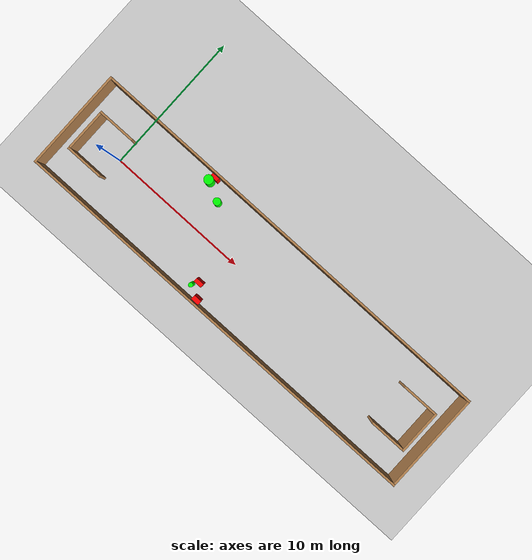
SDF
<sdf version="1.7">
 <world name="default">
  <light name="sun" type="directional">
   <pose>0 0 10 0 -0 0</pose>
   <diffuse>0.8 0.8 0.8 1</diffuse>
   <specular>0.2 0.2 0.2 1</specular>
   <attenuation>
    <range>1000</range>
    <constant>0.9</constant>
    <linear>0.01</linear>
    <quadratic>0.001</quadratic>
   </attenuation>
   <direction>-0.5 0.1 -0.9</direction>
   <spot><inner_angle>0</inner_angle><outer_angle>0</outer_angle><falloff>0</falloff></spot>
  </light>
  <model name="ground_plane">
   <static>1</static>
   <link name="link">
    <collision name="collision">
     <geometry><plane><normal>0 0 1</normal><size>100 100</size></plane></geometry>
     <surface>
      <contact><collide_bitmask>65535</collide_bitmask></contact>
      <friction><ode><mu>100</mu><mu2>50</mu2></ode></friction>
     </surface>
    </collision>
    <visual name="visual">
     <cast_shadows>0</cast_shadows>
     <geometry><plane><normal>0 0 1</normal><size>100 100</size></plane></geometry>
     <material>
      <script><uri>file://media/materials/scripts/gazebo.material</uri><name>Gazebo/Grey</name></script>
     </material>
    </visual>
   </link>
  </model>
  <gravity>0 0 -9.8</gravity>
  <magnetic_field>6e-06 2.3e-05 -4.2e-05</magnetic_field>
  <atmosphere type="adiabatic"/>
  <physics type="ode">
   <max_step_size>0.001</max_step_size>
   <real_time_factor>1</real_time_factor>
   <real_time_update_rate>1000</real_time_update_rate>
  </physics>
  <scene><ambient>0.4 0.4 0.4 1</ambient><background>0.7 0.7 0.7 1</background><shadows>1</shadows></scene>
  <spherical_coordinates>
   <surface_model>EARTH_WGS84</surface_model>
   <latitude_deg>0</latitude_deg>
   <longitude_deg>0</longitude_deg>
   <elevation>0</elevation>
   <heading_deg>0</heading_deg>
  </spherical_coordinates>
  <model name="my_base_walls">
   <link name="Wall_0">
    <collision name="Wall_0_Collision">
     <geometry><box><size>7.15 0.15 2.5</size></box></geometry>
     <pose>0 0 1.25 0 -0 0</pose>
    </collision>
    <visual name="Wall_0_Visual">
     <pose>0 0 1.25 0 -0 0</pose>
     <geometry><box><size>7.15 0.15 2.5</size></box></geometry>
     <material>
      <script><uri>file://media/materials/scripts/gazebo.material</uri><name>Gazebo/Wood</name></script>
      <ambient>1 1 1 1</ambient>
     </material>
     <meta><layer>0</layer></meta>
    </visual>
    <pose>-15 0 0 0 -0 1.5708</pose>
   </link>
   <link name="Wall_10">
    <collision name="Wall_10_Collision">
     <geometry><box><size>2.65 0.15 2.5</size></box></geometry>
     <pose>0 0 1.25 0 -0 0</pose>
    </collision>
    <visual name="Wall_10_Visual">
     <pose>0 0 1.25 0 -0 0</pose>
     <geometry><box><size>2.65 0.15 2.5</size></box></geometry>
     <material>
      <script><uri>file://media/materials/scripts/gazebo.material</uri><name>Gazebo/Wood</name></script>
      <ambient>1 1 1 1</ambient>
     </material>
     <meta><layer>0</layer></meta>
    </visual>
    <pose>-12.75 -1.5 0 0 -0 0</pose>
   </link>
   <link name="Wall_12">
    <collision name="Wall_12_Collision">
     <geometry><box><size>2.65 0.15 2.5</size></box></geometry>
     <pose>0 0 1.25 0 -0 0</pose>
    </collision>
    <visual name="Wall_12_Visual">
     <pose>0 0 1.25 0 -0 0</pose>
     <geometry><box><size>2.65 0.15 2.5</size></box></geometry>
     <material>
      <script><uri>file://media/materials/scripts/gazebo.material</uri><name>Gazebo/Wood</name></script>
      <ambient>1 1 1 1</ambient>
     </material>
     <meta><layer>0</layer></meta>
    </visual>
    <pose>-12.75 1.5 0 0 -0 0</pose>
   </link>
   <link name="Wall_14">
    <collision name="Wall_14_Collision">
     <geometry><box><size>3.15 0.15 2.5</size></box></geometry>
     <pose>0 0 1.25 0 -0 0</pose>
    </collision>
    <visual name="Wall_14_Visual">
     <pose>0 0 1.25 0 -0 0</pose>
     <geometry><box><size>3.15 0.15 2.5</size></box></geometry>
     <material>
      <script><uri>file://media/materials/scripts/gazebo.material</uri><name>Gazebo/Wood</name></script>
      <ambient>1 1 1 1</ambient>
     </material>
     <meta><layer>0</layer></meta>
    </visual>
    <pose>14 0 0 0 -0 -1.5708</pose>
   </link>
   <link name="Wall_15">
    <collision name="Wall_15_Collision">
     <geometry><box><size>2.65 0.15 2.5</size></box></geometry>
     <pose>0 0 1.25 0 -0 0</pose>
    </collision>
    <visual name="Wall_15_Visual">
     <pose>0 0 1.25 0 -0 0</pose>
     <geometry><box><size>2.65 0.15 2.5</size></box></geometry>
     <material>
      <script><uri>file://media/materials/scripts/gazebo.material</uri><name>Gazebo/Wood</name></script>
      <ambient>1 1 1 1</ambient>
     </material>
     <meta><layer>0</layer></meta>
    </visual>
    <pose>12.75 -1.5 0 0 -0 3.14159</pose>
   </link>
   <link name="Wall_17">
    <collision name="Wall_17_Collision">
     <geometry><box><size>2.65 0.15 2.5</size></box></geometry>
     <pose>0 0 1.25 0 -0 0</pose>
    </collision>
    <visual name="Wall_17_Visual">
     <pose>0 0 1.25 0 -0 0</pose>
     <geometry><box><size>2.65 0.15 2.5</size></box></geometry>
     <material>
      <script><uri>file://media/materials/scripts/gazebo.material</uri><name>Gazebo/Wood</name></script>
      <ambient>1 1 1 1</ambient>
     </material>
     <meta><layer>0</layer></meta>
    </visual>
    <pose>12.75 1.5 0 0 -0 3.14159</pose>
   </link>
   <link name="Wall_2">
    <collision name="Wall_2_Collision">
     <geometry><box><size>30.15 0.15 2.5</size></box></geometry>
     <pose>0 0 1.25 0 -0 0</pose>
    </collision>
    <visual name="Wall_2_Visual">
     <pose>0 0 1.25 0 -0 0</pose>
     <geometry><box><size>30.15 0.15 2.5</size></box></geometry>
     <material>
      <script><uri>file://media/materials/scripts/gazebo.material</uri><name>Gazebo/Wood</name></script>
      <ambient>1 1 1 1</ambient>
     </material>
     <meta><layer>0</layer></meta>
    </visual>
    <pose>-0 -3.5 0 0 -0 0</pose>
   </link>
   <link name="Wall_4">
    <collision name="Wall_4_Collision">
     <geometry><box><size>30.15 0.15 2.5</size></box></geometry>
     <pose>0 0 1.25 0 -0 0</pose>
    </collision>
    <visual name="Wall_4_Visual">
     <pose>0 0 1.25 0 -0 0</pose>
     <geometry><box><size>30.15 0.15 2.5</size></box></geometry>
     <material>
      <script><uri>file://media/materials/scripts/gazebo.material</uri><name>Gazebo/Wood</name></script>
      <ambient>1 1 1 1</ambient>
     </material>
     <meta><layer>0</layer></meta>
    </visual>
    <pose>-0 3.5 0 0 -0 0</pose>
   </link>
   <link name="Wall_6">
    <collision name="Wall_6_Collision">
     <geometry><box><size>7.15 0.15 2.5</size></box></geometry>
     <pose>0 0 1.25 0 -0 0</pose>
    </collision>
    <visual name="Wall_6_Visual">
     <pose>0 0 1.25 0 -0 0</pose>
     <geometry><box><size>7.15 0.15 2.5</size></box></geometry>
     <material>
      <script><uri>file://media/materials/scripts/gazebo.material</uri><name>Gazebo/Wood</name></script>
      <ambient>1 1 1 1</ambient>
     </material>
     <meta><layer>0</layer></meta>
    </visual>
    <pose>15 0 0 0 -0 -1.5708</pose>
   </link>
   <link name="Wall_9">
    <collision name="Wall_9_Collision">
     <geometry><box><size>3.15 0.15 2.5</size></box></geometry>
     <pose>0 0 1.25 0 -0 0</pose>
    </collision>
    <visual name="Wall_9_Visual">
     <pose>0 0 1.25 0 -0 0</pose>
     <geometry><box><size>3.15 0.15 2.5</size></box></geometry>
     <material>
      <script><uri>file://media/materials/scripts/gazebo.material</uri><name>Gazebo/Wood</name></script>
      <ambient>1 1 1 1</ambient>
     </material>
     <meta><layer>0</layer></meta>
    </visual>
    <pose>-14 0 0 0 -0 -1.5708</pose>
   </link>
   <static>1</static>
   <pose>11.5 0 0 0 -0 0</pose>
  </model>
  <model name="cylinder1">
   <static>1</static>
   <link name="link">
    <inertial>
     <mass>1</mass>
     <inertia><ixx>0.5</ixx><ixy>0</ixy><ixz>0</ixz><iyy>0.5</iyy><iyz>0</iyz><izz>1</izz></inertia>
    </inertial>
    <collision name="collision">
     <geometry><cylinder><radius>0.3202533689779855</radius><length>2.5</length></cylinder></geometry>
    </collision>
    <visual name="visual">
     <geometry><cylinder><radius>0.3202533689779855</radius><length>2.5</length></cylinder></geometry>
     <material>
      <ambient>0 1 0 1</ambient>
      <diffuse>0 1 0 1</diffuse>
      <specular>0.1 0.1 0.1 1</specular>
      <emissive>0 0 0 0</emissive>
     </material>
    </visual>
   </link>
   <pose>5.237587757224503 2.8751152618291966 1.25 0 0 0</pose>
  </model>
  <model name="cylinder2">
   <static>1</static>
   <link name="link">
    <inertial>
     <mass>1</mass>
     <inertia><ixx>0.5</ixx><ixy>0</ixy><ixz>0</ixz><iyy>0.5</iyy><iyz>0</iyz><izz>1</izz></inertia>
    </inertial>
    <collision name="collision">
     <geometry><cylinder><radius>0.15198895690503145</radius><length>2.5</length></cylinder></geometry>
    </collision>
    <visual name="visual">
     <geometry><cylinder><radius>0.15198895690503145</radius><length>2.5</length></cylinder></geometry>
     <material>
      <ambient>0 1 0 1</ambient>
      <diffuse>0 1 0 1</diffuse>
      <specular>0.1 0.1 0.1 1</specular>
      <emissive>0 0 0 0</emissive>
     </material>
    </visual>
   </link>
   <pose>8.800616612996377 -2.731641470367814 1.25 0 0 0</pose>
  </model>
  <model name="cylinder3">
   <static>1</static>
   <link name="link">
    <inertial>
     <mass>1</mass>
     <inertia><ixx>0.5</ixx><ixy>0</ixy><ixz>0</ixz><iyy>0.5</iyy><iyz>0</iyz><izz>1</izz></inertia>
    </inertial>
    <collision name="collision">
     <geometry><cylinder><radius>0.2533268351173854</radius><length>2.5</length></cylinder></geometry>
    </collision>
    <visual name="visual">
     <geometry><cylinder><radius>0.2533268351173854</radius><length>2.5</length></cylinder></geometry>
     <material>
      <ambient>0 1 0 1</ambient>
      <diffuse>0 1 0 1</diffuse>
      <specular>0.1 0.1 0.1 1</specular>
      <emissive>0 0 0 0</emissive>
     </material>
    </visual>
   </link>
   <pose>6.535220060623345 2.207466375691701 1.25 0 0 0</pose>
  </model>
  <model name="box1">
   <static>1</static>
   <link name="link">
    <inertial>
     <mass>1</mass>
     <inertia><ixx>0.083</ixx><ixy>0</ixy><ixz>0</ixz><iyy>0.083</iyy><iyz>0</iyz><izz>0.083</izz></inertia>
    </inertial>
    <collision name="collision">
     <geometry><box><size>0.5592707695643413 0.3276350088961532 2.5</size></box></geometry>
    </collision>
    <visual name="visual">
     <geometry><box><size>0.5592707695643413 0.3276350088961532 2.5</size></box></geometry>
     <material>
      <ambient>1 0 0 1</ambient>
      <diffuse>1 0 0 1</diffuse>
      <specular>0.1 0.1 0.1 1</specular>
      <emissive>0 0 0 0</emissive>
     </material>
    </visual>
    <sensor name="my_contact" type="contact">
     <contact><collision>box_collision</collision><topic>__default_topic__</topic></contact>
    </sensor>
   </link>
   <pose>9.69422946560702 -3.2012839715196413 1.25 0 0 0</pose>
  </model>
  <model name="box2">
   <static>1</static>
   <link name="link">
    <inertial>
     <mass>1</mass>
     <inertia><ixx>0.083</ixx><ixy>0</ixy><ixz>0</ixz><iyy>0.083</iyy><iyz>0</iyz><izz>0.083</izz></inertia>
    </inertial>
    <collision name="collision">
     <geometry><box><size>0.5231026152709157 0.25702511662817995 2.5</size></box></geometry>
    </collision>
    <visual name="visual">
     <geometry><box><size>0.5231026152709157 0.25702511662817995 2.5</size></box></geometry>
     <material>
      <ambient>1 0 0 1</ambient>
      <diffuse>1 0 0 1</diffuse>
      <specular>0.1 0.1 0.1 1</specular>
      <emissive>0 0 0 0</emissive>
     </material>
    </visual>
    <sensor name="my_contact" type="contact">
     <contact><collision>box_collision</collision><topic>__default_topic__</topic></contact>
    </sensor>
   </link>
   <pose>5.4282228829094485 3.2414821460687655 1.25 0 0 0</pose>
  </model>
  <model name="box3">
   <static>1</static>
   <link name="link">
    <inertial>
     <mass>1</mass>
     <inertia><ixx>0.083</ixx><ixy>0</ixy><ixz>0</ixz><iyy>0.083</iyy><iyz>0</iyz><izz>0.083</izz></inertia>
    </inertial>
    <collision name="collision">
     <geometry><box><size>0.573035538417102 0.28425398551503717 2.5</size></box></geometry>
    </collision>
    <visual name="visual">
     <geometry><box><size>0.573035538417102 0.28425398551503717 2.5</size></box></geometry>
     <material>
      <ambient>1 0 0 1</ambient>
      <diffuse>1 0 0 1</diffuse>
      <specular>0.1 0.1 0.1 1</specular>
      <emissive>0 0 0 0</emissive>
     </material>
    </visual>
    <sensor name="my_contact" type="contact">
     <contact><collision>box_collision</collision><topic>__default_topic__</topic></contact>
    </sensor>
   </link>
   <pose>9.08650281571774 -2.2952069677927787 1.25 0 0 0</pose>
  </model>
 </world>
</sdf>
